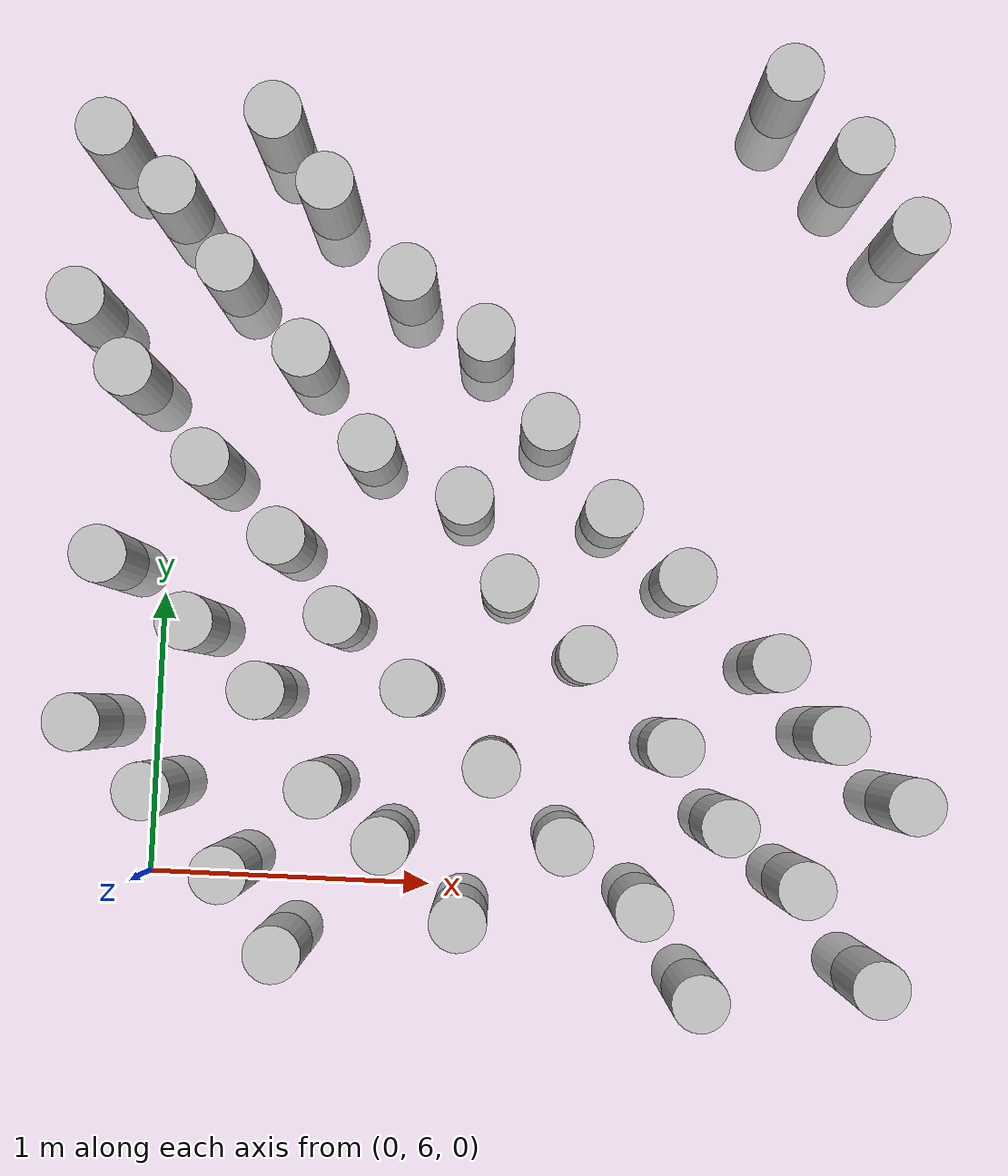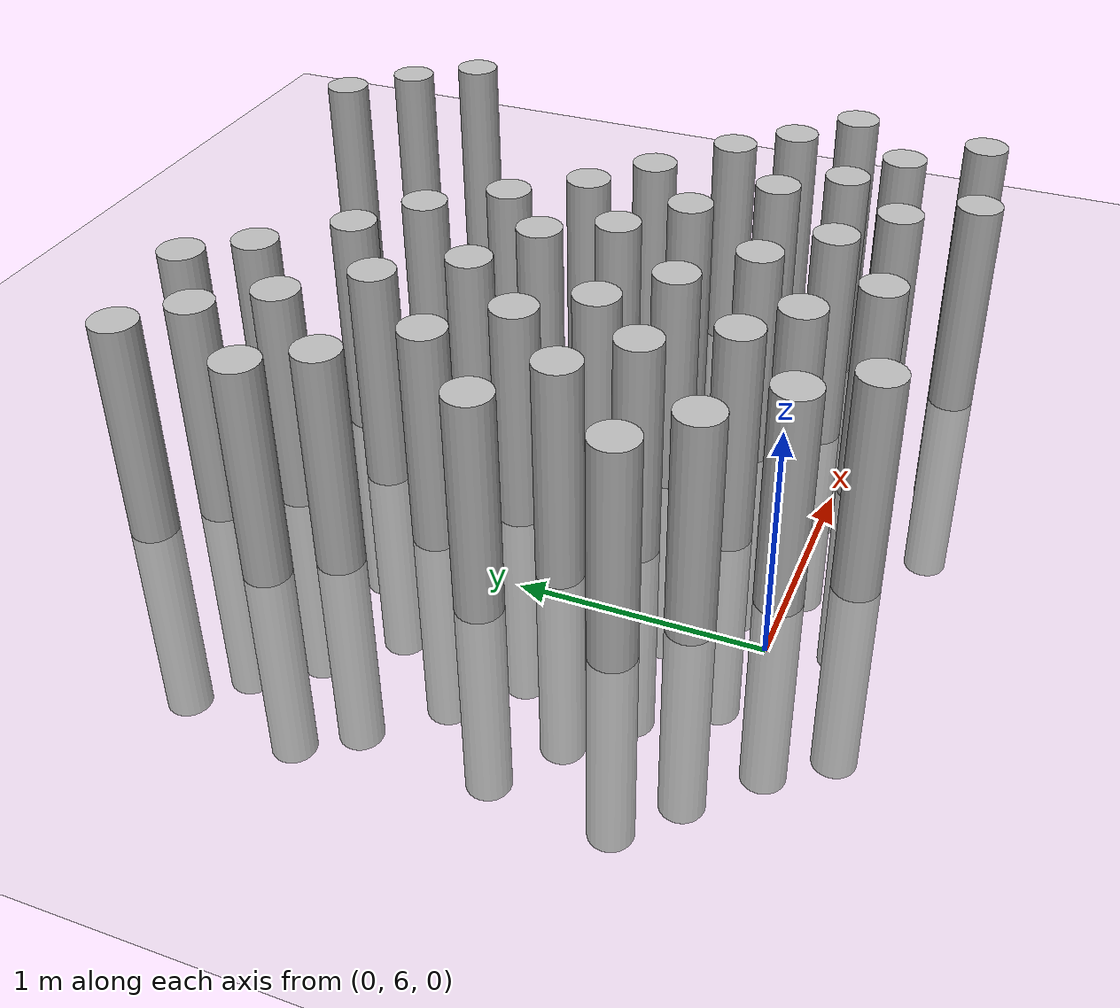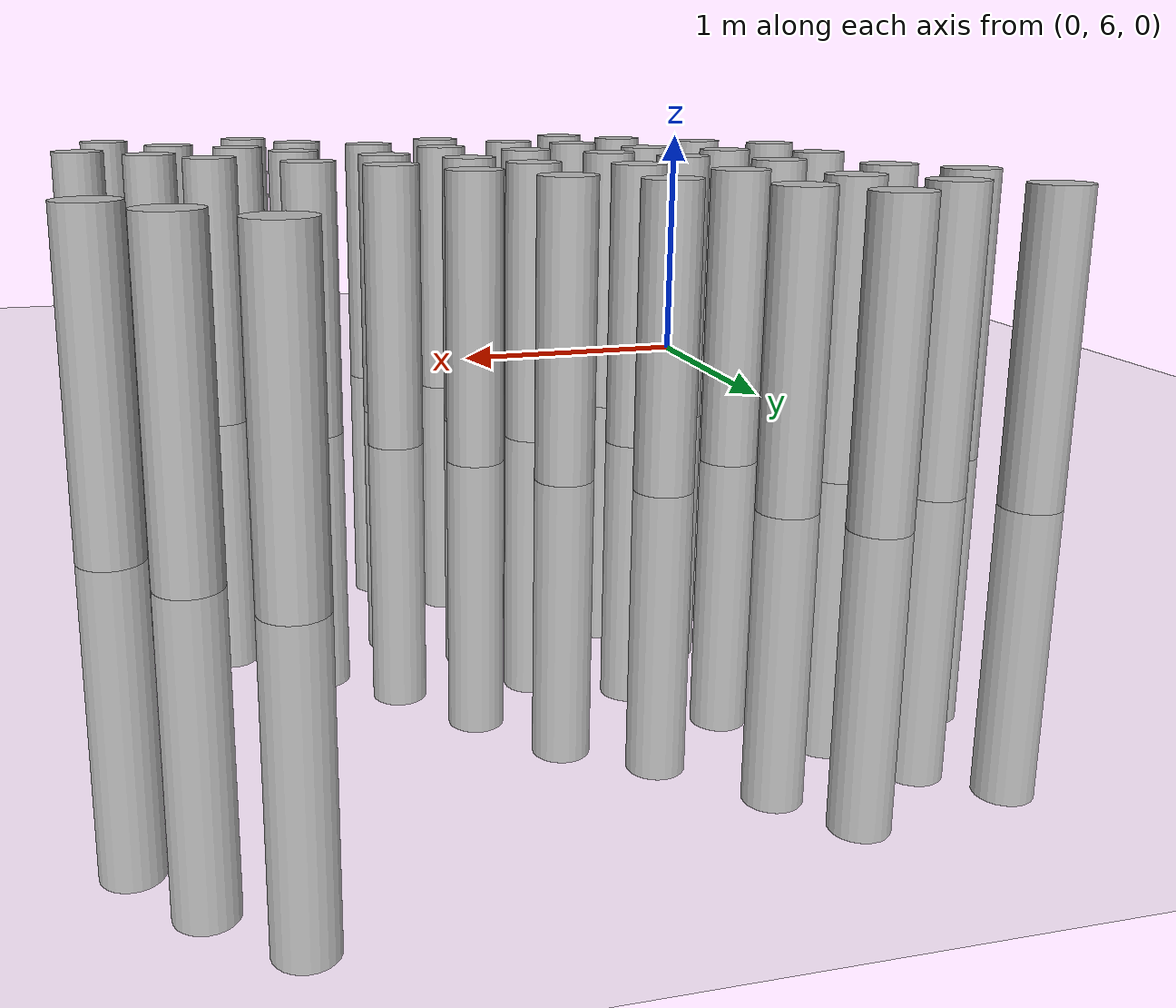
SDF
<sdf version="1.7">
 <world name="farmland_world">
  <model name="ground_plane">
   <static>1</static>
   <link name="link">
    <collision name="collision">
     <geometry><plane><normal>0 0 1</normal><size>40.0 40.0</size></plane></geometry>
     <surface><friction><ode><mu>100</mu><mu2>50</mu2></ode></friction></surface>
    </collision>
    <visual name="visual">
     <cast_shadows>0</cast_shadows>
     <geometry><plane><normal>0 0 1</normal><size>40.0 40.0</size></plane></geometry>
     <material>
      <script><uri>file://media/materials/scripts/gazebo.material</uri><name>Gazebo/Grey</name></script>
     </material>
    </visual>
   </link>
  </model>
  <model name="tree_2_59">
   <static>1</static>
   <link name="link">
    <collision name="collision">
     <geometry><cylinder><radius>0.1</radius><length>2.0</length></cylinder></geometry>
     <surface><friction><ode><mu>100</mu><mu2>50</mu2></ode></friction></surface>
    </collision>
    <visual name="visual">
     <geometry><cylinder><radius>0.1</radius><length>2.0</length></cylinder></geometry>
    </visual>
   </link>
   <pose>1.1172097137105421 5.9073055982076665 0 0 0 0</pose>
  </model>
  <model name="tree_2_60">
   <static>1</static>
   <link name="link">
    <collision name="collision">
     <geometry><cylinder><radius>0.1</radius><length>2.0</length></cylinder></geometry>
     <surface><friction><ode><mu>100</mu><mu2>50</mu2></ode></friction></surface>
    </collision>
    <visual name="visual">
     <geometry><cylinder><radius>0.1</radius><length>2.0</length></cylinder></geometry>
    </visual>
   </link>
   <pose>0.8418190982522522 6.159138188901179 0 0 0 0</pose>
  </model>
  <model name="tree_2_61">
   <static>1</static>
   <link name="link">
    <collision name="collision">
     <geometry><cylinder><radius>0.1</radius><length>2.0</length></cylinder></geometry>
     <surface><friction><ode><mu>100</mu><mu2>50</mu2></ode></friction></surface>
    </collision>
    <visual name="visual">
     <geometry><cylinder><radius>0.1</radius><length>2.0</length></cylinder></geometry>
    </visual>
   </link>
   <pose>0.6039613006752479 6.337763759912452 0 0 0 0</pose>
  </model>
  <model name="tree_2_62">
   <static>1</static>
   <link name="link">
    <collision name="collision">
     <geometry><cylinder><radius>0.1</radius><length>2.0</length></cylinder></geometry>
     <surface><friction><ode><mu>100</mu><mu2>50</mu2></ode></friction></surface>
    </collision>
    <visual name="visual">
     <geometry><cylinder><radius>0.1</radius><length>2.0</length></cylinder></geometry>
    </visual>
   </link>
   <pose>0.3927148208869966 6.665478405094701 0 0 0 0</pose>
  </model>
  <model name="tree_2_63">
   <static>1</static>
   <link name="link">
    <collision name="collision">
     <geometry><cylinder><radius>0.1</radius><length>2.0</length></cylinder></geometry>
     <surface><friction><ode><mu>100</mu><mu2>50</mu2></ode></friction></surface>
    </collision>
    <visual name="visual">
     <geometry><cylinder><radius>0.1</radius><length>2.0</length></cylinder></geometry>
    </visual>
   </link>
   <pose>0.13692883543076304 6.889258804046084 0 0 0 0</pose>
  </model>
  <model name="tree_2_64">
   <static>1</static>
   <link name="link">
    <collision name="collision">
     <geometry><cylinder><radius>0.1</radius><length>2.0</length></cylinder></geometry>
     <surface><friction><ode><mu>100</mu><mu2>50</mu2></ode></friction></surface>
    </collision>
    <visual name="visual">
     <geometry><cylinder><radius>0.1</radius><length>2.0</length></cylinder></geometry>
    </visual>
   </link>
   <pose>-0.16676745821309388 7.10391987508002 0 0 0 0</pose>
  </model>
  <model name="tree_2_97">
   <static>1</static>
   <link name="link">
    <collision name="collision">
     <geometry><cylinder><radius>0.1</radius><length>2.0</length></cylinder></geometry>
     <surface><friction><ode><mu>100</mu><mu2>50</mu2></ode></friction></surface>
    </collision>
    <visual name="visual">
     <geometry><cylinder><radius>0.1</radius><length>2.0</length></cylinder></geometry>
    </visual>
   </link>
   <pose>2.657779503973435 6.378055825019684 0 0 0 0</pose>
  </model>
  <model name="tree_2_98">
   <static>1</static>
   <link name="link">
    <collision name="collision">
     <geometry><cylinder><radius>0.1</radius><length>2.0</length></cylinder></geometry>
     <surface><friction><ode><mu>100</mu><mu2>50</mu2></ode></friction></surface>
    </collision>
    <visual name="visual">
     <geometry><cylinder><radius>0.1</radius><length>2.0</length></cylinder></geometry>
    </visual>
   </link>
   <pose>2.3869951019225804 6.60664532903011 0 0 0 0</pose>
  </model>
  <model name="tree_2_99">
   <static>1</static>
   <link name="link">
    <collision name="collision">
     <geometry><cylinder><radius>0.1</radius><length>2.0</length></cylinder></geometry>
     <surface><friction><ode><mu>100</mu><mu2>50</mu2></ode></friction></surface>
    </collision>
    <visual name="visual">
     <geometry><cylinder><radius>0.1</radius><length>2.0</length></cylinder></geometry>
    </visual>
   </link>
   <pose>2.1733774782202278 6.844088550923577 0 0 0 0</pose>
  </model>
  <model name="tree_2_100">
   <static>1</static>
   <link name="link">
    <collision name="collision">
     <geometry><cylinder><radius>0.1</radius><length>2.0</length></cylinder></geometry>
     <surface><friction><ode><mu>100</mu><mu2>50</mu2></ode></friction></surface>
    </collision>
    <visual name="visual">
     <geometry><cylinder><radius>0.1</radius><length>2.0</length></cylinder></geometry>
    </visual>
   </link>
   <pose>1.8419184134933009 7.121141617859848 0 0 0 0</pose>
  </model>
  <model name="tree_2_101">
   <static>1</static>
   <link name="link">
    <collision name="collision">
     <geometry><cylinder><radius>0.1</radius><length>2.0</length></cylinder></geometry>
     <surface><friction><ode><mu>100</mu><mu2>50</mu2></ode></friction></surface>
    </collision>
    <visual name="visual">
     <geometry><cylinder><radius>0.1</radius><length>2.0</length></cylinder></geometry>
    </visual>
   </link>
   <pose>1.581187624931876 7.341053966253933 0 0 0 0</pose>
  </model>
  <model name="tree_2_102">
   <static>1</static>
   <link name="link">
    <collision name="collision">
     <geometry><cylinder><radius>0.1</radius><length>2.0</length></cylinder></geometry>
     <surface><friction><ode><mu>100</mu><mu2>50</mu2></ode></friction></surface>
    </collision>
    <visual name="visual">
     <geometry><cylinder><radius>0.1</radius><length>2.0</length></cylinder></geometry>
    </visual>
   </link>
   <pose>1.3512029186085637 7.626708615032779 0 0 0 0</pose>
  </model>
  <model name="tree_2_103">
   <static>1</static>
   <link name="link">
    <collision name="collision">
     <geometry><cylinder><radius>0.1</radius><length>2.0</length></cylinder></geometry>
     <surface><friction><ode><mu>100</mu><mu2>50</mu2></ode></friction></surface>
    </collision>
    <visual name="visual">
     <geometry><cylinder><radius>0.1</radius><length>2.0</length></cylinder></geometry>
    </visual>
   </link>
   <pose>1.1162709954629835 7.920450354913824 0 0 0 0</pose>
  </model>
  <model name="tree_2_104">
   <static>1</static>
   <link name="link">
    <collision name="collision">
     <geometry><cylinder><radius>0.1</radius><length>2.0</length></cylinder></geometry>
     <surface><friction><ode><mu>100</mu><mu2>50</mu2></ode></friction></surface>
    </collision>
    <visual name="visual">
     <geometry><cylinder><radius>0.1</radius><length>2.0</length></cylinder></geometry>
    </visual>
   </link>
   <pose>0.8374770685447647 8.113801362348537 0 0 0 0</pose>
  </model>
  <model name="tree_2_105">
   <static>1</static>
   <link name="link">
    <collision name="collision">
     <geometry><cylinder><radius>0.1</radius><length>2.0</length></cylinder></geometry>
     <surface><friction><ode><mu>100</mu><mu2>50</mu2></ode></friction></surface>
    </collision>
    <visual name="visual">
     <geometry><cylinder><radius>0.1</radius><length>2.0</length></cylinder></geometry>
    </visual>
   </link>
   <pose>0.5419307334315221 8.412635583016035 0 0 0 0</pose>
  </model>
  <model name="tree_2_106">
   <static>1</static>
   <link name="link">
    <collision name="collision">
     <geometry><cylinder><radius>0.1</radius><length>2.0</length></cylinder></geometry>
     <surface><friction><ode><mu>100</mu><mu2>50</mu2></ode></friction></surface>
    </collision>
    <visual name="visual">
     <geometry><cylinder><radius>0.1</radius><length>2.0</length></cylinder></geometry>
    </visual>
   </link>
   <pose>0.3531253693582246 8.64634095841903 0 0 0 0</pose>
  </model>
  <model name="tree_2_141">
   <static>1</static>
   <link name="link">
    <collision name="collision">
     <geometry><cylinder><radius>0.1</radius><length>2.0</length></cylinder></geometry>
     <surface><friction><ode><mu>100</mu><mu2>50</mu2></ode></friction></surface>
    </collision>
    <visual name="visual">
     <geometry><cylinder><radius>0.1</radius><length>2.0</length></cylinder></geometry>
    </visual>
   </link>
   <pose>2.580197918048349 8.355440117380008 0 0 0 0</pose>
  </model>
  <model name="tree_2_142">
   <static>1</static>
   <link name="link">
    <collision name="collision">
     <geometry><cylinder><radius>0.1</radius><length>2.0</length></cylinder></geometry>
     <surface><friction><ode><mu>100</mu><mu2>50</mu2></ode></friction></surface>
    </collision>
    <visual name="visual">
     <geometry><cylinder><radius>0.1</radius><length>2.0</length></cylinder></geometry>
    </visual>
   </link>
   <pose>2.378594644155567 8.619909503563276 0 0 0 0</pose>
  </model>
  <model name="tree_2_143">
   <static>1</static>
   <link name="link">
    <collision name="collision">
     <geometry><cylinder><radius>0.1</radius><length>2.0</length></cylinder></geometry>
     <surface><friction><ode><mu>100</mu><mu2>50</mu2></ode></friction></surface>
    </collision>
    <visual name="visual">
     <geometry><cylinder><radius>0.1</radius><length>2.0</length></cylinder></geometry>
    </visual>
   </link>
   <pose>2.126022072171864 8.860197381002385 0 0 0 0</pose>
  </model>
  <model name="tree_2_300">
   <static>1</static>
   <link name="link">
    <collision name="collision">
     <geometry><cylinder><radius>0.1</radius><length>2.0</length></cylinder></geometry>
     <surface><friction><ode><mu>100</mu><mu2>50</mu2></ode></friction></surface>
    </collision>
    <visual name="visual">
     <geometry><cylinder><radius>0.1</radius><length>2.0</length></cylinder></geometry>
    </visual>
   </link>
   <pose>0.4919093038428482 5.772242094568378 0 0 0 0</pose>
  </model>
  <model name="tree_2_301">
   <static>1</static>
   <link name="link">
    <collision name="collision">
     <geometry><cylinder><radius>0.1</radius><length>2.0</length></cylinder></geometry>
     <surface><friction><ode><mu>100</mu><mu2>50</mu2></ode></friction></surface>
    </collision>
    <visual name="visual">
     <geometry><cylinder><radius>0.1</radius><length>2.0</length></cylinder></geometry>
    </visual>
   </link>
   <pose>0.2960518347041338 6.0331967036235925 0 0 0 0</pose>
  </model>
  <model name="tree_2_302">
   <static>1</static>
   <link name="link">
    <collision name="collision">
     <geometry><cylinder><radius>0.1</radius><length>2.0</length></cylinder></geometry>
     <surface><friction><ode><mu>100</mu><mu2>50</mu2></ode></friction></surface>
    </collision>
    <visual name="visual">
     <geometry><cylinder><radius>0.1</radius><length>2.0</length></cylinder></geometry>
    </visual>
   </link>
   <pose>0.019979308590092115 6.304225452735627 0 0 0 0</pose>
  </model>
  <model name="tree_2_303">
   <static>1</static>
   <link name="link">
    <collision name="collision">
     <geometry><cylinder><radius>0.1</radius><length>2.0</length></cylinder></geometry>
     <surface><friction><ode><mu>100</mu><mu2>50</mu2></ode></friction></surface>
    </collision>
    <visual name="visual">
     <geometry><cylinder><radius>0.1</radius><length>2.0</length></cylinder></geometry>
    </visual>
   </link>
   <pose>-0.2281173101865896 6.526840607854219 0 0 0 0</pose>
  </model>
  <model name="tree_2_337">
   <static>1</static>
   <link name="link">
    <collision name="collision">
     <geometry><cylinder><radius>0.1</radius><length>2.0</length></cylinder></geometry>
     <surface><friction><ode><mu>100</mu><mu2>50</mu2></ode></friction></surface>
    </collision>
    <visual name="visual">
     <geometry><cylinder><radius>0.1</radius><length>2.0</length></cylinder></geometry>
    </visual>
   </link>
   <pose>1.9541671586337015 5.67614486892235 0 0 0 0</pose>
  </model>
  <model name="tree_2_338">
   <static>1</static>
   <link name="link">
    <collision name="collision">
     <geometry><cylinder><radius>0.1</radius><length>2.0</length></cylinder></geometry>
     <surface><friction><ode><mu>100</mu><mu2>50</mu2></ode></friction></surface>
    </collision>
    <visual name="visual">
     <geometry><cylinder><radius>0.1</radius><length>2.0</length></cylinder></geometry>
    </visual>
   </link>
   <pose>1.7484230158676455 5.977148493707952 0 0 0 0</pose>
  </model>
  <model name="tree_2_339">
   <static>1</static>
   <link name="link">
    <collision name="collision">
     <geometry><cylinder><radius>0.1</radius><length>2.0</length></cylinder></geometry>
     <surface><friction><ode><mu>100</mu><mu2>50</mu2></ode></friction></surface>
    </collision>
    <visual name="visual">
     <geometry><cylinder><radius>0.1</radius><length>2.0</length></cylinder></geometry>
    </visual>
   </link>
   <pose>1.4670351357438987 6.185474677054612 0 0 0 0</pose>
  </model>
  <model name="tree_2_340">
   <static>1</static>
   <link name="link">
    <collision name="collision">
     <geometry><cylinder><radius>0.1</radius><length>2.0</length></cylinder></geometry>
     <surface><friction><ode><mu>100</mu><mu2>50</mu2></ode></friction></surface>
    </collision>
    <visual name="visual">
     <geometry><cylinder><radius>0.1</radius><length>2.0</length></cylinder></geometry>
    </visual>
   </link>
   <pose>1.2061640879057105 6.4391972521379355 0 0 0 0</pose>
  </model>
  <model name="tree_2_341">
   <static>1</static>
   <link name="link">
    <collision name="collision">
     <geometry><cylinder><radius>0.1</radius><length>2.0</length></cylinder></geometry>
     <surface><friction><ode><mu>100</mu><mu2>50</mu2></ode></friction></surface>
    </collision>
    <visual name="visual">
     <geometry><cylinder><radius>0.1</radius><length>2.0</length></cylinder></geometry>
    </visual>
   </link>
   <pose>0.9135829308327617 6.69764230160782 0 0 0 0</pose>
  </model>
  <model name="tree_2_342">
   <static>1</static>
   <link name="link">
    <collision name="collision">
     <geometry><cylinder><radius>0.1</radius><length>2.0</length></cylinder></geometry>
     <surface><friction><ode><mu>100</mu><mu2>50</mu2></ode></friction></surface>
    </collision>
    <visual name="visual">
     <geometry><cylinder><radius>0.1</radius><length>2.0</length></cylinder></geometry>
    </visual>
   </link>
   <pose>0.6417056195356569 6.933089823699207 0 0 0 0</pose>
  </model>
  <model name="tree_2_343">
   <static>1</static>
   <link name="link">
    <collision name="collision">
     <geometry><cylinder><radius>0.1</radius><length>2.0</length></cylinder></geometry>
     <surface><friction><ode><mu>100</mu><mu2>50</mu2></ode></friction></surface>
    </collision>
    <visual name="visual">
     <geometry><cylinder><radius>0.1</radius><length>2.0</length></cylinder></geometry>
    </visual>
   </link>
   <pose>0.43654048842451165 7.194574445634883 0 0 0 0</pose>
  </model>
  <model name="tree_2_344">
   <static>1</static>
   <link name="link">
    <collision name="collision">
     <geometry><cylinder><radius>0.1</radius><length>2.0</length></cylinder></geometry>
     <surface><friction><ode><mu>100</mu><mu2>50</mu2></ode></friction></surface>
    </collision>
    <visual name="visual">
     <geometry><cylinder><radius>0.1</radius><length>2.0</length></cylinder></geometry>
    </visual>
   </link>
   <pose>0.1652560475341992 7.450243742822497 0 0 0 0</pose>
  </model>
  <model name="tree_2_345">
   <static>1</static>
   <link name="link">
    <collision name="collision">
     <geometry><cylinder><radius>0.1</radius><length>2.0</length></cylinder></geometry>
     <surface><friction><ode><mu>100</mu><mu2>50</mu2></ode></friction></surface>
    </collision>
    <visual name="visual">
     <geometry><cylinder><radius>0.1</radius><length>2.0</length></cylinder></geometry>
    </visual>
   </link>
   <pose>-0.11312495849827076 7.743624076102492 0 0 0 0</pose>
  </model>
  <model name="tree_2_346">
   <static>1</static>
   <link name="link">
    <collision name="collision">
     <geometry><cylinder><radius>0.1</radius><length>2.0</length></cylinder></geometry>
     <surface><friction><ode><mu>100</mu><mu2>50</mu2></ode></friction></surface>
    </collision>
    <visual name="visual">
     <geometry><cylinder><radius>0.1</radius><length>2.0</length></cylinder></geometry>
    </visual>
   </link>
   <pose>-0.2867882462947325 7.979380084562665 0 0 0 0</pose>
  </model>
  <model name="tree_2_376">
   <static>1</static>
   <link name="link">
    <collision name="collision">
     <geometry><cylinder><radius>0.1</radius><length>2.0</length></cylinder></geometry>
     <surface><friction><ode><mu>100</mu><mu2>50</mu2></ode></friction></surface>
    </collision>
    <visual name="visual">
     <geometry><cylinder><radius>0.1</radius><length>2.0</length></cylinder></geometry>
    </visual>
   </link>
   <pose>2.564217792058632 5.7517461330976785 0 0 0 0</pose>
  </model>
  <model name="tree_2_377">
   <static>1</static>
   <link name="link">
    <collision name="collision">
     <geometry><cylinder><radius>0.1</radius><length>2.0</length></cylinder></geometry>
     <surface><friction><ode><mu>100</mu><mu2>50</mu2></ode></friction></surface>
    </collision>
    <visual name="visual">
     <geometry><cylinder><radius>0.1</radius><length>2.0</length></cylinder></geometry>
    </visual>
   </link>
   <pose>2.297533153283902 6.076560389074429 0 0 0 0</pose>
  </model>
  <model name="tree_2_378">
   <static>1</static>
   <link name="link">
    <collision name="collision">
     <geometry><cylinder><radius>0.1</radius><length>2.0</length></cylinder></geometry>
     <surface><friction><ode><mu>100</mu><mu2>50</mu2></ode></friction></surface>
    </collision>
    <visual name="visual">
     <geometry><cylinder><radius>0.1</radius><length>2.0</length></cylinder></geometry>
    </visual>
   </link>
   <pose>2.027688703013621 6.274925230691358 0 0 0 0</pose>
  </model>
  <model name="tree_2_379">
   <static>1</static>
   <link name="link">
    <collision name="collision">
     <geometry><cylinder><radius>0.1</radius><length>2.0</length></cylinder></geometry>
     <surface><friction><ode><mu>100</mu><mu2>50</mu2></ode></friction></surface>
    </collision>
    <visual name="visual">
     <geometry><cylinder><radius>0.1</radius><length>2.0</length></cylinder></geometry>
    </visual>
   </link>
   <pose>1.8282743791517249 6.538993214661667 0 0 0 0</pose>
  </model>
  <model name="tree_2_380">
   <static>1</static>
   <link name="link">
    <collision name="collision">
     <geometry><cylinder><radius>0.1</radius><length>2.0</length></cylinder></geometry>
     <surface><friction><ode><mu>100</mu><mu2>50</mu2></ode></friction></surface>
    </collision>
    <visual name="visual">
     <geometry><cylinder><radius>0.1</radius><length>2.0</length></cylinder></geometry>
    </visual>
   </link>
   <pose>1.5156983360580403 6.841344685803436 0 0 0 0</pose>
  </model>
  <model name="tree_2_381">
   <static>1</static>
   <link name="link">
    <collision name="collision">
     <geometry><cylinder><radius>0.1</radius><length>2.0</length></cylinder></geometry>
     <surface><friction><ode><mu>100</mu><mu2>50</mu2></ode></friction></surface>
    </collision>
    <visual name="visual">
     <geometry><cylinder><radius>0.1</radius><length>2.0</length></cylinder></geometry>
    </visual>
   </link>
   <pose>1.2378108882155705 7.070391234503545 0 0 0 0</pose>
  </model>
  <model name="tree_2_382">
   <static>1</static>
   <link name="link">
    <collision name="collision">
     <geometry><cylinder><radius>0.1</radius><length>2.0</length></cylinder></geometry>
     <surface><friction><ode><mu>100</mu><mu2>50</mu2></ode></friction></surface>
    </collision>
    <visual name="visual">
     <geometry><cylinder><radius>0.1</radius><length>2.0</length></cylinder></geometry>
    </visual>
   </link>
   <pose>1.0704439924213625 7.360779396489224 0 0 0 0</pose>
  </model>
  <model name="tree_2_383">
   <static>1</static>
   <link name="link">
    <collision name="collision">
     <geometry><cylinder><radius>0.1</radius><length>2.0</length></cylinder></geometry>
     <surface><friction><ode><mu>100</mu><mu2>50</mu2></ode></friction></surface>
    </collision>
    <visual name="visual">
     <geometry><cylinder><radius>0.1</radius><length>2.0</length></cylinder></geometry>
    </visual>
   </link>
   <pose>0.7300033140668225 7.524484133902962 0 0 0 0</pose>
  </model>
  <model name="tree_2_384">
   <static>1</static>
   <link name="link">
    <collision name="collision">
     <geometry><cylinder><radius>0.1</radius><length>2.0</length></cylinder></geometry>
     <surface><friction><ode><mu>100</mu><mu2>50</mu2></ode></friction></surface>
    </collision>
    <visual name="visual">
     <geometry><cylinder><radius>0.1</radius><length>2.0</length></cylinder></geometry>
    </visual>
   </link>
   <pose>0.48885000172301896 7.837944347012274 0 0 0 0</pose>
  </model>
  <model name="tree_2_385">
   <static>1</static>
   <link name="link">
    <collision name="collision">
     <geometry><cylinder><radius>0.1</radius><length>2.0</length></cylinder></geometry>
     <surface><friction><ode><mu>100</mu><mu2>50</mu2></ode></friction></surface>
    </collision>
    <visual name="visual">
     <geometry><cylinder><radius>0.1</radius><length>2.0</length></cylinder></geometry>
    </visual>
   </link>
   <pose>0.21534012639562153 8.11616564052751 0 0 0 0</pose>
  </model>
  <model name="tree_2_386">
   <static>1</static>
   <link name="link">
    <collision name="collision">
     <geometry><cylinder><radius>0.1</radius><length>2.0</length></cylinder></geometry>
     <surface><friction><ode><mu>100</mu><mu2>50</mu2></ode></friction></surface>
    </collision>
    <visual name="visual">
     <geometry><cylinder><radius>0.1</radius><length>2.0</length></cylinder></geometry>
    </visual>
   </link>
   <pose>0.006006969303979148 8.371015844257043 0 0 0 0</pose>
  </model>
  <model name="tree_2_387">
   <static>1</static>
   <link name="link">
    <collision name="collision">
     <geometry><cylinder><radius>0.1</radius><length>2.0</length></cylinder></geometry>
     <surface><friction><ode><mu>100</mu><mu2>50</mu2></ode></friction></surface>
    </collision>
    <visual name="visual">
     <geometry><cylinder><radius>0.1</radius><length>2.0</length></cylinder></geometry>
    </visual>
   </link>
   <pose>-0.2178758071220928 8.561288207064122 0 0 0 0</pose>
  </model>
 </world>
</sdf>
